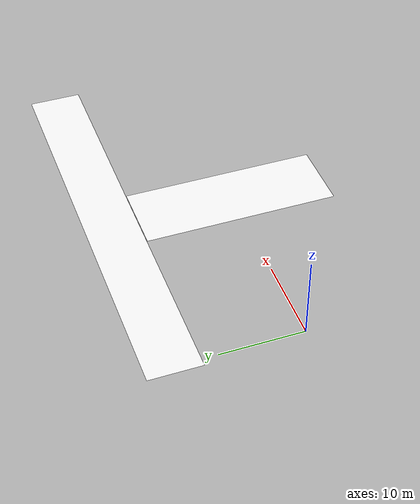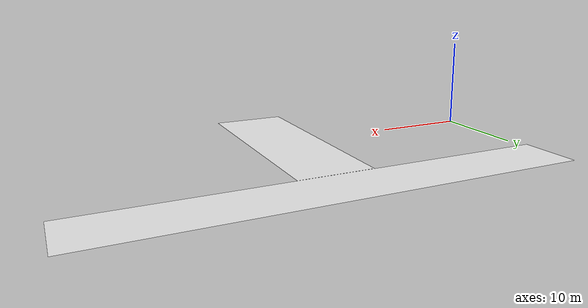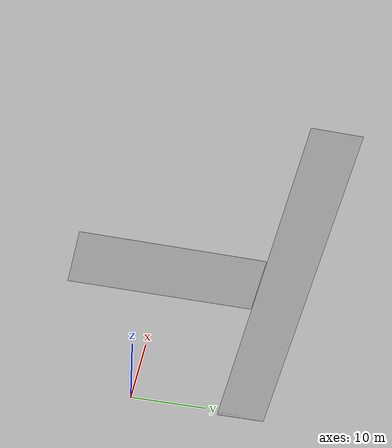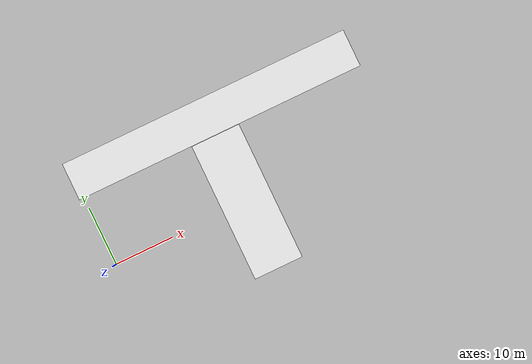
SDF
<?xml version="1.0" ?>
<sdf version="1.5">
<model name="road">
  <static>true</static>
  <link name="road_link">

  <visual name="road">
    <pose>0 0 0 0 0 0</pose>
    <geometry>
      <mesh><uri>model://road/meshes/road.dae</uri><scale>1 1 1</scale></mesh>
    </geometry>
  </visual>

  <collision name="road">
    <pose>0 0 0 0 0 0</pose>
    <geometry>
      <mesh><uri>model://road/meshes/road.dae</uri><scale>1 1 1</scale></mesh>
    </geometry>
  </collision>

  </link>
</model>
</sdf>
